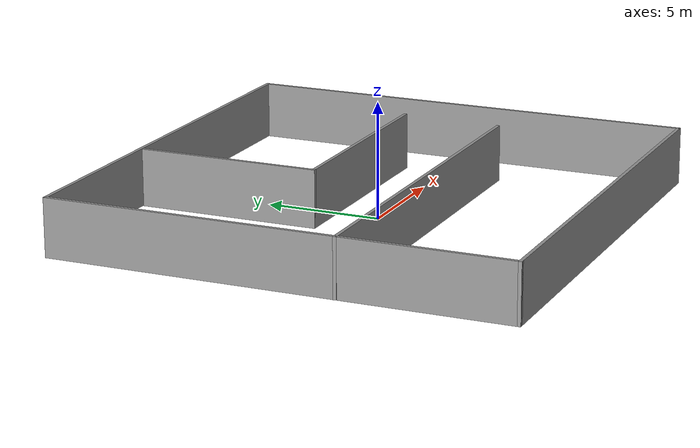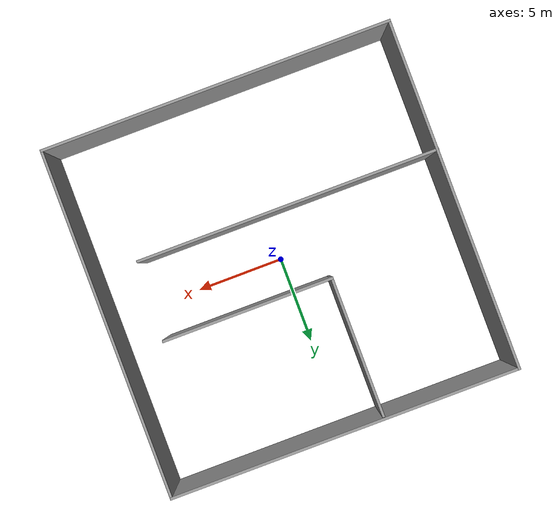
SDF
<?xml version='1.0'?>
<sdf version='1.7'>
  <model name='room'>
    <pose>0.023217 0.008299 0 0 -0 0</pose>
    <link name='Wall_0'>
      <collision name='Wall_0_Collision'>
        <geometry>
          <box>
            <size>20 0.15 2.5</size>
          </box>
        </geometry>
        <pose>0 0 1.25 0 -0 0</pose>
      </collision>
      <visual name='Wall_0_Visual'>
        <pose>0 0 1.25 0 -0 0</pose>
        <geometry>
          <box>
            <size>20 0.15 2.5</size>
          </box>
        </geometry>
        <material>
          <script>
            <uri>file://media/materials/scripts/gazebo.material</uri>
            <name>Gazebo/Grey</name>
          </script>
          <ambient>1 1 1 1</ambient>
        </material>
        <meta>
          <layer>0</layer>
        </meta>
      </visual>
      <pose>0.007359 -9.925 0 0 -0 0</pose>
    </link>
    <link name='Wall_11'>
      <collision name='Wall_11_Collision'>
        <geometry>
          <box>
            <size>9.75 0.15 2.5</size>
          </box>
        </geometry>
        <pose>0 0 1.25 0 -0 0</pose>
      </collision>
      <visual name='Wall_11_Visual'>
        <pose>0 0 1.25 0 -0 0</pose>
        <geometry>
          <box>
            <size>9.75 0.15 2.5</size>
          </box>
        </geometry>
        <material>
          <script>
            <uri>file://media/materials/scripts/gazebo.material</uri>
            <name>Gazebo/Grey</name>
          </script>
          <ambient>1 1 1 1</ambient>
        </material>
        <meta>
          <layer>0</layer>
        </meta>
      </visual>
      <pose>2.57264 1.90063 0 0 -0 0</pose>
    </link>
    <link name='Wall_2'>
      <collision name='Wall_2_Collision'>
        <geometry>
          <box>
            <size>20 0.15 2.5</size>
          </box>
        </geometry>
        <pose>0 0 1.25 0 -0 0</pose>
      </collision>
      <visual name='Wall_2_Visual'>
        <pose>0 0 1.25 0 -0 0</pose>
        <geometry>
          <box>
            <size>20 0.15 2.5</size>
          </box>
        </geometry>
        <material>
          <script>
            <uri>file://media/materials/scripts/gazebo.material</uri>
            <name>Gazebo/Grey</name>
          </script>
          <ambient>1 1 1 1</ambient>
        </material>
        <meta>
          <layer>0</layer>
        </meta>
      </visual>
      <pose>-9.91764 0 0 0 -0 1.5708</pose>
    </link>
    <link name='Wall_3'>
      <collision name='Wall_3_Collision'>
        <geometry>
          <box>
            <size>20 0.15 2.5</size>
          </box>
        </geometry>
        <pose>0 0 1.25 0 -0 0</pose>
      </collision>
      <visual name='Wall_3_Visual'>
        <pose>0 0 1.25 0 -0 0</pose>
        <geometry>
          <box>
            <size>20 0.15 2.5</size>
          </box>
        </geometry>
        <material>
          <script>
            <uri>file://media/materials/scripts/gazebo.material</uri>
            <name>Gazebo/Grey</name>
          </script>
          <ambient>1 1 1 1</ambient>
        </material>
        <meta>
          <layer>0</layer>
        </meta>
      </visual>
      <pose>0.007359 9.925 0 0 -0 0</pose>
    </link>
    <link name='Wall_4'>
      <collision name='Wall_4_Collision'>
        <geometry>
          <box>
            <size>20 0.15 2.5</size>
          </box>
        </geometry>
        <pose>0 0 1.25 0 -0 0</pose>
      </collision>
      <visual name='Wall_4_Visual'>
        <pose>0 0 1.25 0 -0 0</pose>
        <geometry>
          <box>
            <size>20 0.15 2.5</size>
          </box>
        </geometry>
        <material>
          <script>
            <uri>file://media/materials/scripts/gazebo.material</uri>
            <name>Gazebo/Grey</name>
          </script>
          <ambient>1 1 1 1</ambient>
        </material>
        <meta>
          <layer>0</layer>
        </meta>
      </visual>
      <pose>9.93236 0 0 0 -0 -1.5708</pose>
    </link>
    <link name='Wall_6'>
      <collision name='Wall_6_Collision'>
        <geometry>
          <box>
            <size>17.25 0.15 2.5</size>
          </box>
        </geometry>
        <pose>0 0 1.25 0 -0 0</pose>
      </collision>
      <visual name='Wall_6_Visual'>
        <pose>0 0 1.25 0 -0 0</pose>
        <geometry>
          <box>
            <size>17.25 0.15 2.5</size>
          </box>
        </geometry>
        <material>
          <script>
            <uri>file://media/materials/scripts/gazebo.material</uri>
            <name>Gazebo/Grey</name>
          </script>
          <ambient>1 1 1 1</ambient>
        </material>
        <meta>
          <layer>0</layer>
        </meta>
      </visual>
      <pose>-1.38236 -2.57737 0 0 -0 0</pose>
    </link>
    <link name='Wall_8'>
      <collision name='Wall_8_Collision'>
        <geometry>
          <box>
            <size>8 0.15 2.5</size>
          </box>
        </geometry>
        <pose>0 0 1.25 0 -0 0</pose>
      </collision>
      <visual name='Wall_8_Visual'>
        <pose>0 0 1.25 0 -0 0</pose>
        <geometry>
          <box>
            <size>8 0.15 2.5</size>
          </box>
        </geometry>
        <material>
          <script>
            <uri>file://media/materials/scripts/gazebo.material</uri>
            <name>Gazebo/Grey</name>
          </script>
          <ambient>1 1 1 1</ambient>
        </material>
        <meta>
          <layer>0</layer>
        </meta>
      </visual>
      <pose>-2.22736 5.82563 0 0 -0 -1.5708</pose>
    </link>
    <static>1</static>
  </model>
</sdf>
